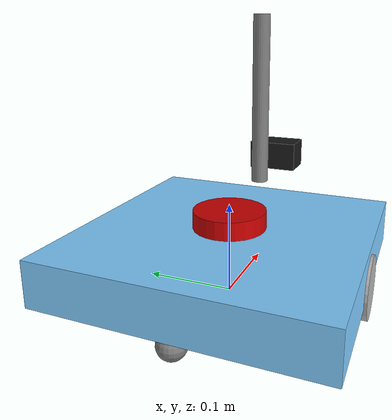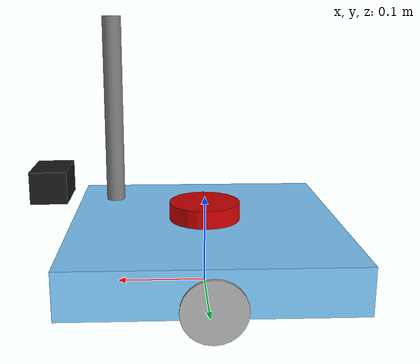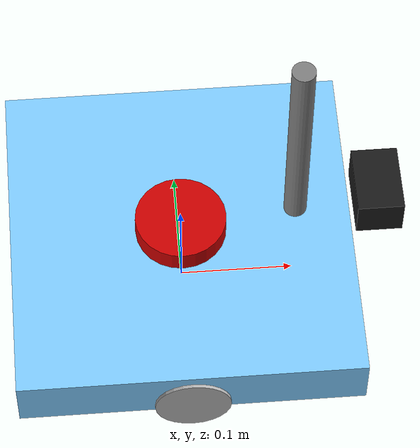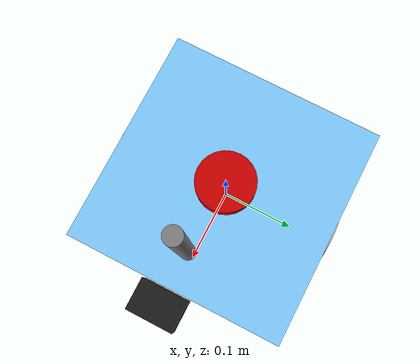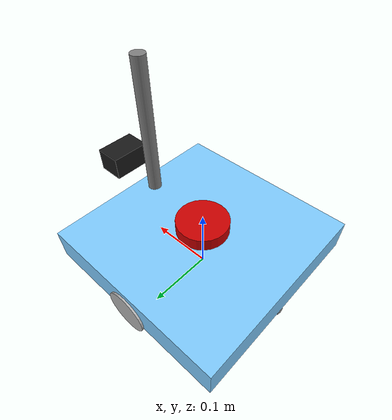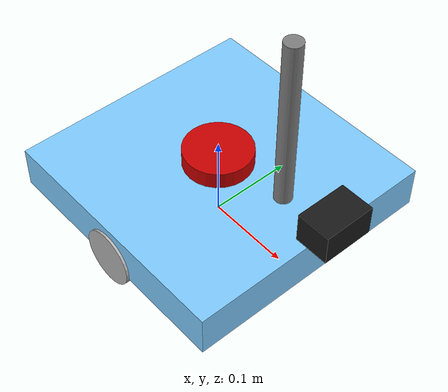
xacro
<?xml version="1.0"?>
<robot name="turtlebot" xmlns:xacro="http://www.ros.org/wiki/xacro">

  <!-- ==================== PROPERTIES ==================== -->
  <xacro:property name="chassis_length"  value="0.3"/>
  <xacro:property name="chassis_width"   value="0.3"/>
  <xacro:property name="chassis_height"  value="0.05"/>
  <xacro:property name="chassis_mass"    value="1.0"/>
  <xacro:property name="chassis_z"       value="0.05"/>

  <xacro:property name="wheel_radius"    value="0.033"/>
  <xacro:property name="wheel_width"     value="0.026"/>
  <xacro:property name="wheel_mass"      value="0.1"/>
  <xacro:property name="wheel_separation" value="0.28"/>

  <xacro:property name="caster_radius"   value="0.015"/>
  <xacro:property name="caster_mass"     value="0.05"/>

  <xacro:property name="lidar_radius"    value="0.04"/>
  <xacro:property name="lidar_height"    value="0.02"/>
  <xacro:property name="lidar_mass"      value="0.05"/>

  <!-- ==================== INERTIA MACROS ==================== -->
  <xacro:macro name="box_inertia" params="m w h d">
    <inertial>
      <mass value="${m}"/>
      <inertia ixx="${(m/12.0)*(h*h+d*d)}" ixy="0" ixz="0"
               iyy="${(m/12.0)*(w*w+d*d)}" iyz="0"
               izz="${(m/12.0)*(w*w+h*h)}"/>
    </inertial>
  </xacro:macro>

  <xacro:macro name="cylinder_inertia" params="m r h">
    <inertial>
      <mass value="${m}"/>
      <inertia ixx="${(m/12.0)*(3*r*r+h*h)}" ixy="0" ixz="0"
               iyy="${(m/12.0)*(3*r*r+h*h)}" iyz="0"
               izz="${(m/2.0)*(r*r)}"/>
    </inertial>
  </xacro:macro>

  <xacro:macro name="sphere_inertia" params="m r">
    <inertial>
      <mass value="${m}"/>
      <inertia ixx="${(2.0/5.0)*m*r*r}" ixy="0" ixz="0"
               iyy="${(2.0/5.0)*m*r*r}" iyz="0"
               izz="${(2.0/5.0)*m*r*r}"/>
    </inertial>
  </xacro:macro>

  <!-- ==================== BASE FOOTPRINT ==================== -->
  <link name="base_footprint"/>

  <!-- ==================== BASE LINK (CHASSIS) ==================== -->
  <link name="base_link">
    <visual>
      <geometry>
        <box size="${chassis_length} ${chassis_width} ${chassis_height}"/>
      </geometry>
      <material name="chassis_color">
        <color rgba="0.5 0.8 1.0 1.0"/>
      </material>
    </visual>
    <collision>
      <geometry>
        <box size="${chassis_length} ${chassis_width} ${chassis_height}"/>
      </geometry>
    </collision>
    <xacro:box_inertia m="${chassis_mass}" w="${chassis_width}" h="${chassis_height}" d="${chassis_length}"/>
  </link>

  <joint name="base_joint" type="fixed">
    <parent link="base_footprint"/>
    <child link="base_link"/>
    <origin xyz="0 0 ${chassis_z}" rpy="0 0 0"/>
  </joint>

  <gazebo reference="base_link">
    <material>Gazebo/Blue</material>
  </gazebo>

  <!-- ==================== WHEEL MACRO ==================== -->
  <xacro:macro name="wheel" params="prefix y_offset">
    <link name="${prefix}_wheel">
      <visual>
        <geometry>
          <cylinder radius="${wheel_radius}" length="${wheel_width}"/>
        </geometry>
        <material name="wheel_color">
          <color rgba="0.7 0.7 0.7 1.0"/>
        </material>
      </visual>
      <collision>
        <geometry>
          <cylinder radius="${wheel_radius}" length="${wheel_width}"/>
        </geometry>
      </collision>
      <xacro:cylinder_inertia m="${wheel_mass}" r="${wheel_radius}" h="${wheel_width}"/>
    </link>

    <joint name="${prefix}_wheel_joint" type="continuous">
      <parent link="base_link"/>
      <child link="${prefix}_wheel"/>
      <origin xyz="0 ${y_offset} ${-chassis_z + wheel_radius}" rpy="${-pi/2} 0 0"/>
      <axis xyz="0 0 1"/>
      <dynamics damping="0.2"/>
    </joint>

    <gazebo reference="${prefix}_wheel">
      <material>Gazebo/Black</material>
      <mu1>1.0</mu1>
      <mu2>1.0</mu2>
      <kp>500000.0</kp>
      <kd>10.0</kd>
    </gazebo>
  </xacro:macro>

  <xacro:wheel prefix="left"  y_offset="${wheel_separation/2}"/>
  <xacro:wheel prefix="right" y_offset="${-wheel_separation/2}"/>

  <!-- ==================== CASTER WHEEL ==================== -->
  <link name="caster_wheel">
    <visual>
      <geometry>
        <sphere radius="${caster_radius}"/>
      </geometry>
      <material name="caster_color">
        <color rgba="0.5 0.5 0.5 1.0"/>
      </material>
    </visual>
    <collision>
      <geometry>
        <sphere radius="${caster_radius}"/>
      </geometry>
    </collision>
    <xacro:sphere_inertia m="${caster_mass}" r="${caster_radius}"/>
  </link>

  <joint name="caster_joint" type="fixed">
    <parent link="base_link"/>
    <child link="caster_wheel"/>
    <origin xyz="${-chassis_length/2 + caster_radius} 0 ${-chassis_z + caster_radius}" rpy="0 0 0"/>
  </joint>

  <gazebo reference="caster_wheel">
    <material>Gazebo/Grey</material>
    <mu1>0.0</mu1>
    <mu2>0.0</mu2>
    <kp>500000.0</kp>
    <kd>10.0</kd>
  </gazebo>

  <!-- ==================== LIDAR LINK ==================== -->
  <link name="lidar_link">
    <visual>
      <geometry>
        <cylinder radius="${lidar_radius}" length="${lidar_height}"/>
      </geometry>
      <material name="lidar_color">
        <color rgba="0.8 0.0 0.0 1.0"/>
      </material>
    </visual>
    <collision>
      <geometry>
        <cylinder radius="${lidar_radius}" length="${lidar_height}"/>
      </geometry>
    </collision>
    <xacro:cylinder_inertia m="${lidar_mass}" r="${lidar_radius}" h="${lidar_height}"/>
  </link>

  <joint name="lidar_joint" type="fixed">
    <parent link="base_link"/>
    <child link="lidar_link"/>
    <origin xyz="0 0 ${chassis_height/2 + lidar_height/2}" rpy="0 0 0"/>
  </joint>

  <gazebo reference="lidar_link">
    <material>Gazebo/Red</material>
    <sensor type="ray" name="lidar_sensor">
      <pose>0 0 0 0 0 0</pose>
      <visualize>true</visualize>
      <update_rate>10</update_rate>
      <ray>
        <scan>
          <horizontal>
            <samples>360</samples>
            <resolution>1</resolution>
            <min_angle>-3.14159265359</min_angle>
            <max_angle>3.14159265359</max_angle>
          </horizontal>
        </scan>
        <range>
          <min>0.12</min>
          <max>3.5</max>
          <resolution>0.01</resolution>
        </range>
        <noise>
          <type>gaussian</type>
          <mean>0.0</mean>
          <stddev>0.01</stddev>
        </noise>
      </ray>
      <plugin name="gazebo_ros_lidar" filename="libgazebo_ros_ray_sensor.so">
        <ros>
          <remapping>~/out:=scan</remapping>
        </ros>
        <output_type>sensor_msgs/LaserScan</output_type>
        <frame_name>lidar_link</frame_name>
      </plugin>
    </sensor>
  </gazebo>

  <!-- RGB camera. The optical frame follows the ROS camera convention. -->
  <link name="camera_link">
    <visual>
      <geometry><box size="0.04 0.06 0.035"/></geometry>
      <material name="camera_color"><color rgba="0.1 0.1 0.1 1.0"/></material>
    </visual>
    <collision><geometry><box size="0.04 0.06 0.035"/></geometry></collision>
    <xacro:box_inertia m="0.03" w="0.06" h="0.035" d="0.04"/>
  </link>

  <joint name="camera_joint" type="fixed">
    <parent link="base_link"/>
    <child link="camera_link"/>
    <origin xyz="${chassis_length/2 + 0.02} 0 0.07" rpy="0 0 0"/>
  </joint>

  <link name="camera_optical_frame"/>
  <joint name="camera_optical_joint" type="fixed">
    <parent link="camera_link"/>
    <child link="camera_optical_frame"/>
    <origin xyz="0 0 0" rpy="${-pi/2} 0 ${-pi/2}"/>
  </joint>

  <gazebo reference="camera_link">
    <sensor name="rgb_camera" type="camera">
      <always_on>true</always_on>
      <visualize>true</visualize>
      <update_rate>30</update_rate>
      <camera>
        <horizontal_fov>1.047</horizontal_fov>
        <image><width>640</width><height>480</height><format>R8G8B8</format></image>
        <clip><near>0.05</near><far>20.0</far></clip>
      </camera>
      <plugin name="gazebo_ros_camera" filename="libgazebo_ros_camera.so">
        <ros>
          <remapping>image_raw:=/camera/image_raw</remapping>
          <remapping>camera_info:=/camera/camera_info</remapping>
        </ros>
        <camera_name>camera</camera_name>
        <frame_name>camera_optical_frame</frame_name>
      </plugin>
    </sensor>
  </gazebo>

  <!-- ==================== DIFFERENTIAL DRIVE PLUGIN ==================== -->
  <gazebo>
    <plugin name="gazebo_ros_diff_drive" filename="libgazebo_ros_diff_drive.so">
      <ros>
      </ros>

      <!-- Wheel joints -->
      <left_joint>left_wheel_joint</left_joint>
      <right_joint>right_wheel_joint</right_joint>

      <!-- Kinematics -->
      <wheel_separation>${wheel_separation}</wheel_separation>
      <wheel_diameter>${wheel_radius * 2}</wheel_diameter>

      <!-- Limits -->
      <max_wheel_torque>20</max_wheel_torque>
      <max_wheel_acceleration>1.0</max_wheel_acceleration>

      <!-- Output -->
      <publish_odom>true</publish_odom>
      <publish_odom_tf>true</publish_odom_tf>
      <publish_wheel_tf>false</publish_wheel_tf>

      <odometry_frame>odom</odometry_frame>
      <robot_base_frame>base_footprint</robot_base_frame>

      <odometry_source>1</odometry_source>

      <command_topic>cmd_vel</command_topic>
      <odometry_topic>odom</odometry_topic>
    </plugin>

    <plugin name="gazebo_ros_joint_state_publisher"
        filename="libgazebo_ros_joint_state_publisher.so">
      <ros>
        <remapping>~/out:=joint_states</remapping>
      </ros>

      <update_rate>30</update_rate>

      <joint_name>left_wheel_joint</joint_name>
      <joint_name>right_wheel_joint</joint_name>
    </plugin>

  </gazebo>
<link name="antenna_link">
  <visual>
    <geometry>
      <cylinder radius="0.01" length="0.2"/>
    </geometry>
    <material name="antenna_color">
      <color rgba="0.5 0.5 0.5 1.0"/>
    </material>
  </visual>
</link>
<joint name="antenna_joint" type="fixed">
  <parent link="base_link"/>
  <child link="antenna_link"/>
  <origin xyz="0.1 0 0.15" rpy="0 0 0"/>
</joint>
</robot>
